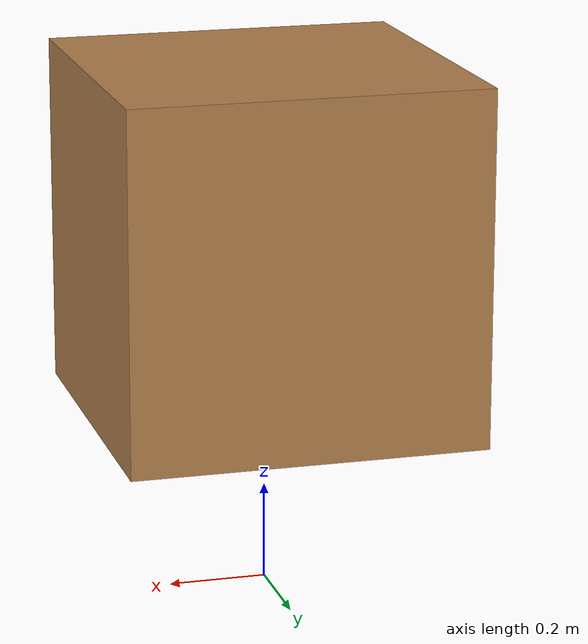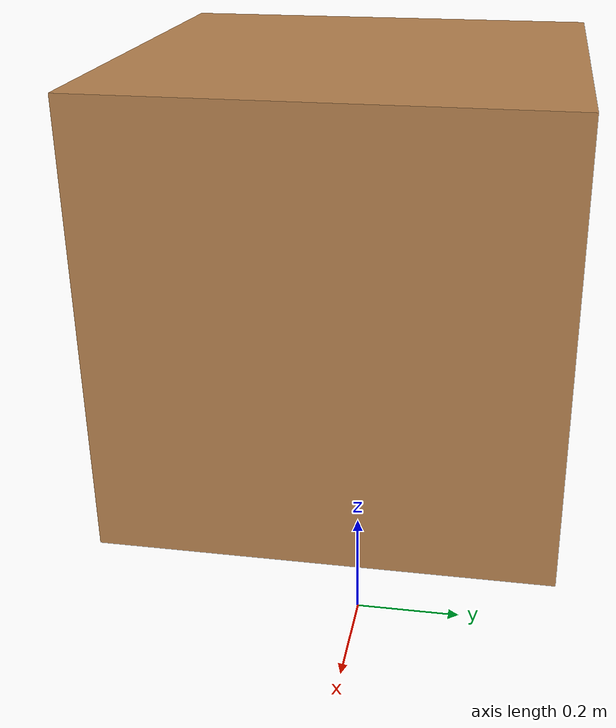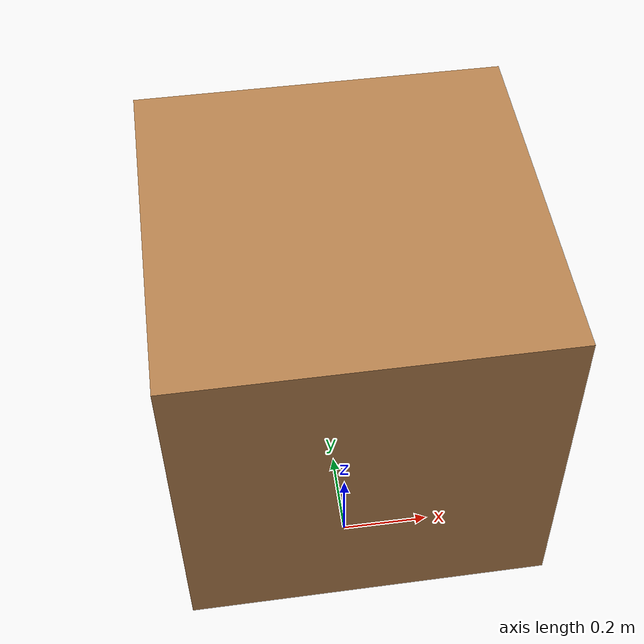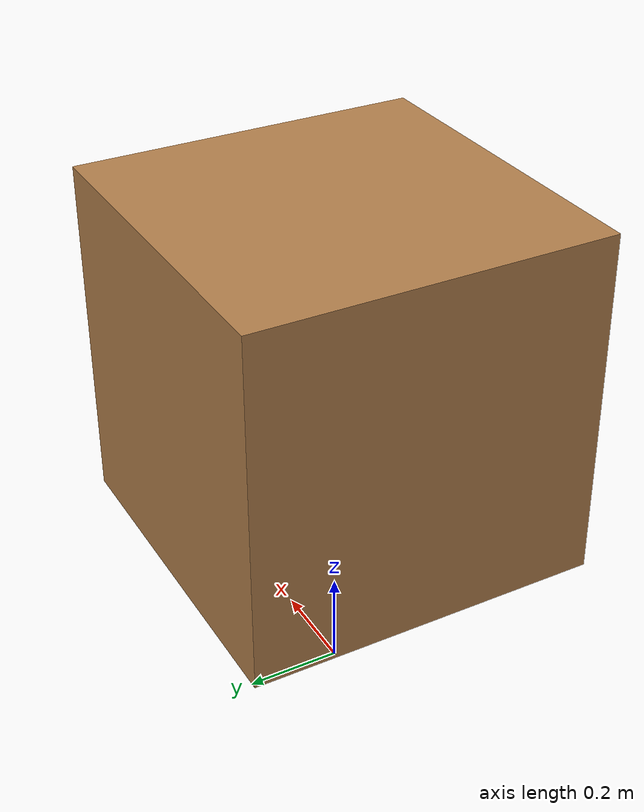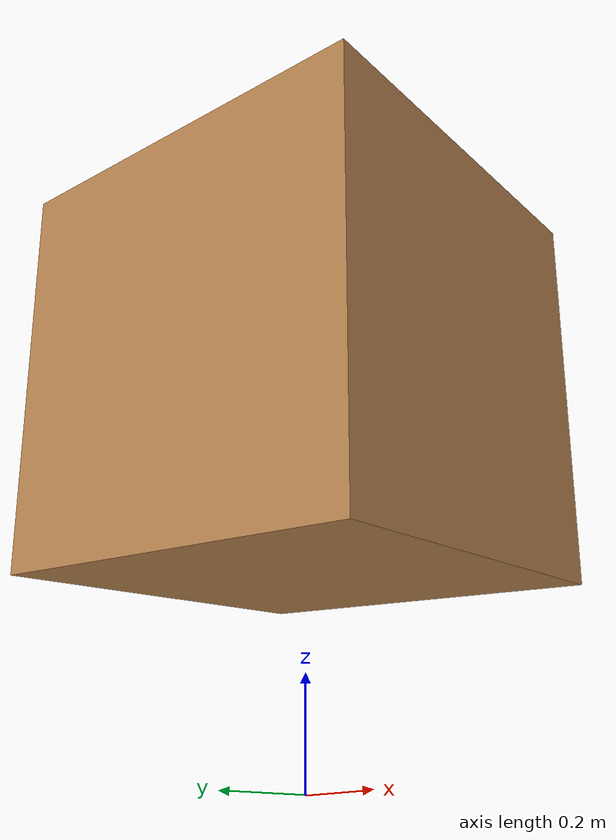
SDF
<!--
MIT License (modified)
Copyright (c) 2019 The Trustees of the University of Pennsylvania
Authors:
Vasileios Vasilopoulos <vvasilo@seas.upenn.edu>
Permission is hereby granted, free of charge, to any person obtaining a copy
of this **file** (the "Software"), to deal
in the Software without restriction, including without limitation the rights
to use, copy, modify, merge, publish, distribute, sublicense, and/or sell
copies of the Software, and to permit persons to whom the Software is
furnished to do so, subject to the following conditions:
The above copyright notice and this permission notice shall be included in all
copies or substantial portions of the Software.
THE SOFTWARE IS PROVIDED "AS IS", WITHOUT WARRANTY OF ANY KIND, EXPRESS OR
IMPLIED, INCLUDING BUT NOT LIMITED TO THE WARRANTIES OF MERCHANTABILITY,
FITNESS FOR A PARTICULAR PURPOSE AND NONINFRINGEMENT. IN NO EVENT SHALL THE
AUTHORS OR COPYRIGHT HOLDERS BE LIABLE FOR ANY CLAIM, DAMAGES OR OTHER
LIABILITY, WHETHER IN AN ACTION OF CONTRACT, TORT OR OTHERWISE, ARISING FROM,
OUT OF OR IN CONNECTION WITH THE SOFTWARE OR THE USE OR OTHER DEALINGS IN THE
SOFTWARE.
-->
<?xml version='1.0'?>

<sdf version='1.6'>
  <model name='block2'>
    <link name='block'>
      <pose frame=''>0 0 0.36 0 0 0</pose> <!-- Set z-coordinate to half the height to place it on the ground -->
      <inertial>
        <mass>200</mass>
        <inertia>
          <ixx>4.78</ixx>
          <ixy>0</ixy>
          <ixz>0</ixz>
          <iyy>6.26</iyy>
          <iyz>0</iyz>
          <izz>8.235</izz>
        </inertia>
        <pose frame=''>0 0 0.36 0 0 0</pose> <!-- Set z-coordinate to half the height to place it on the ground -->
      </inertial>
      <gravity>1</gravity>
      <self_collide>0</self_collide>
      <kinematic>0</kinematic>

      <visual name='block_visual'>
        <pose frame=''>0 0 0.36 0 0 0</pose> <!-- Set z-coordinate to half the height to place it on the ground -->
        <geometry>
          <box>
            <size>0.72 0.72 0.72</size> <!-- Set height to 1 -->
          </box>
        </geometry>
        <material>
          <script>
            <uri>file://media/materials/scripts/gazebo.material</uri>
            <name>Gazebo/Wood</name>
          </script>
        </material>
        <cast_shadows>1</cast_shadows>
        <transparency>0</transparency>
      </visual>
      <collision name='block_collision'>
        <laser_retro>0</laser_retro>
        <pose frame=''>0 0 0.36 0 0 0</pose> <!-- Set z-coordinate to half the height to place it on the ground -->
        <geometry>
          <box>
            <size>0.72 0.72 0.72</size> <!-- Set height to 1 -->
          </box>
        </geometry>
        <surface>
          <friction>
            <ode>
              <mu>100</mu>
              <mu2>50</mu2>
            </ode>
          </friction>
        </surface>
      </collision>
    </link>

    <static>0</static>
    <allow_auto_disable>1</allow_auto_disable>
  </model>
</sdf>
